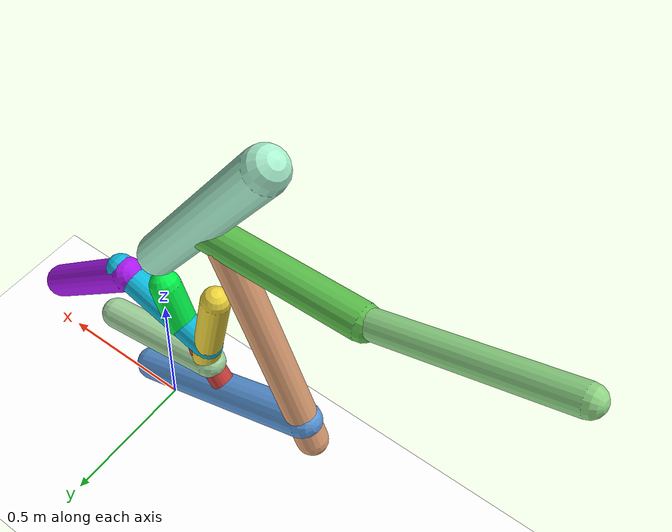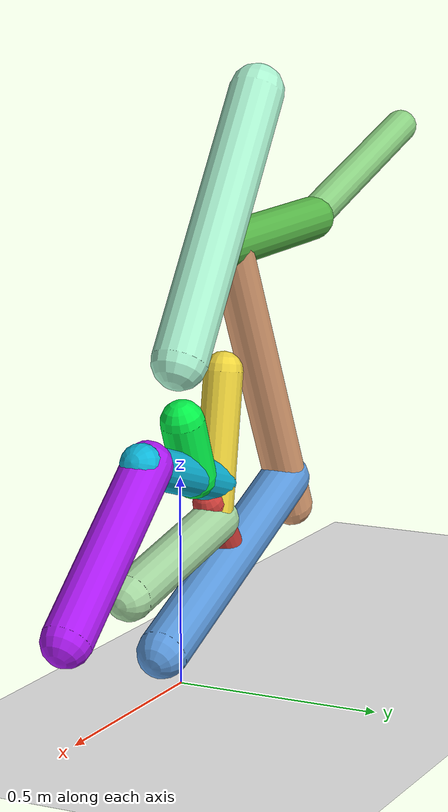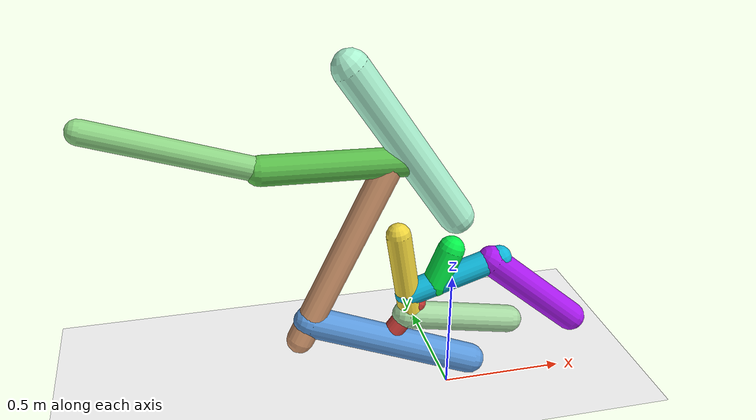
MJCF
<mujoco model="morphology">
  <option timestep="0.01"/>
  <default>
    <default class="/"/>
    <default class="0/"/>
    <default class="0/1/"/>
    <default class="0/1/2/"/>
    <default class="0/1/3/"/>
    <default class="0/1/3/4/"/>
    <default class="0/1/3/4/5/"/>
    <default class="0/1/3/4/5/6/"/>
    <default class="0/1/3/4/5/7/"/>
    <default class="0/1/3/4/5/7/8/"/>
    <default class="0/1/3/4/5/7/8/9/"/>
    <default class="0/1/3/4/5/7/8/10/"/>
  </default>
  <asset>
    <texture name="texplane" type="2d" builtin="checker" rgb1="0.10000000000000001 0.20000000000000001 0.29999999999999999" rgb2="0.20000000000000001 0.29999999999999999 0.40000000000000002" width="300" height="300"/>
    <material name="MatPlane" class="/" texture="texplane" texrepeat="20 20" specular="1" shininess="1" reflectance="0.5"/>
  </asset>
  <worldbody>
    <light name="//unnamed_light_0" class="/" directional="true" pos="0 0 1.5" dir="0 0 -1.3" cutoff="100" exponent="1" diffuse="1 1 1" specular="0.10000000000000001 0.10000000000000001 0.10000000000000001"/>
    <geom name="ground" class="/" type="plane" size="15 15 0.5" material="MatPlane" rgba="1 1 1 1"/>
    <site name="body" class="/" size="9.9999999999999995e-07 9.9999999999999995e-07 9.9999999999999995e-07" pos="0 0 0.77408537864685056"/>
    <body pos="0 0 0.77408537864685056" name="0/">
      <joint name="0/rootx/" class="/" type="slide" axis="1 0 0" limited="false" stiffness="0" armature="0" damping="0"/>
      <joint name="0/rootz/" class="/" type="slide" axis="0 0 1" limited="false" stiffness="0" armature="0" damping="0"/>
      <joint name="0/rooty/" class="/" type="hinge" axis="0 1 0" limited="false" stiffness="0" armature="0" damping="0"/>
      <geom name="0/geom" class="0/" type="capsule" contype="1" conaffinity="1" condim="3" size="0.068133523125485138" rgba="0.67368878331698201 0.95845228916324254 0.82361010507004162 1" friction="0.59999999999999998 0.10000000000000001 0.10000000000000001" fromto="0 0 0 -0.40518606765632675 0 0.59862969507248076"/>
      <site name="0/end0" class="0/" size="0.0050000000000000001" pos="-0.40518606765632675 0 0.59862969507248076"/>
      <site name="0/attach1" class="0/" size="9.9999999999999995e-07 9.9999999999999995e-07 9.9999999999999995e-07" pos="-0.16261823457615437 0 0.2402553097164184"/>
      <body pos="-0.16261823457615437 0 0.2402553097164184" name="0/1/">
        <joint name="0/1/joint/" class="0/" type="hinge" axis="0 1 0" limited="true" range="-34.207994179081147 34.207994179081147"/>
        <geom name="0/1/geom" class="0/1/" type="capsule" contype="1" conaffinity="1" condim="3" size="0.055274214201340301" rgba="0.36089236012931958 0.75295362614327199 0.29893024089903175 1" friction="0.59999999999999998 0.10000000000000001 0.10000000000000001" fromto="0 0 0 -0.56567874397857332 0 0.015321061938565861"/>
        <site name="0/1/end1" class="0/1/" size="0.0050000000000000001" pos="-0.56567874397857332 0 0.015321061938565861"/>
        <site name="0/1/attach2" class="0/1/" size="9.9999999999999995e-07 9.9999999999999995e-07 9.9999999999999995e-07" pos="-0.55503734378513259 0 0.015032846139029036"/>
        <body pos="-0.55503734378513259 0 0.015032846139029036" name="0/1/2/">
          <joint name="0/1/2/joint/" class="0/1/" type="hinge" axis="0 1 0" limited="true" range="-46.633738197059515 46.633738197059515"/>
          <geom name="0/1/2/geom" class="0/1/2/" type="capsule" contype="1" conaffinity="1" condim="3" size="0.044109706651571511" rgba="0.55599383299835448 0.83296011107246093 0.51749352358233303 1" friction="0.59999999999999998 0.10000000000000001 0.10000000000000001" fromto="0 0 0 -0.58656426139093387 0 0.19216393291291767"/>
          <site name="0/1/2/end2" class="0/1/2/" size="0.0050000000000000001" pos="-0.58656426139093387 0 0.19216393291291767"/>
        </body>
        <site name="0/1/attach3" class="0/1/" size="9.9999999999999995e-07 9.9999999999999995e-07 9.9999999999999995e-07" pos="-0.096282345080800483 0 0.0026077482816451586"/>
        <body pos="-0.096282345080800483 0 0.0026077482816451586" name="0/1/3/">
          <joint name="0/1/3/joint/" class="0/1/" type="hinge" axis="0 1 0" limited="true" range="-41.419231732101544 41.419231732101544"/>
          <geom name="0/1/3/geom" class="0/1/3/" type="capsule" contype="1" conaffinity="1" condim="3" size="0.053701980684382492" rgba="0.87018699014469136 0.62761939975638548 0.45384537230287059 1" friction="0.59999999999999998 0.10000000000000001 0.10000000000000001" fromto="0 0 0 -0.35175166034854072 0 -0.71389011365358357"/>
          <site name="0/1/3/end3" class="0/1/3/" size="0.0050000000000000001" pos="-0.35175166034854072 0 -0.71389011365358357"/>
          <site name="0/1/3/attach4" class="0/1/3/" size="9.9999999999999995e-07 9.9999999999999995e-07 9.9999999999999995e-07" pos="-0.31317669056032665 0 -0.63560110276731008"/>
          <body pos="-0.31317669056032665 0 -0.63560110276731008" name="0/1/3/4/">
            <geom name="0/1/3/4/geom" class="0/1/3/4/" type="capsule" contype="1" conaffinity="1" condim="3" size="0.061928049357544881" rgba="0.35748986429106344 0.60098576724272967 0.86789416492055449 1" friction="0.59999999999999998 0.10000000000000001 0.10000000000000001" fromto="0 0 0 0.66440738364730545 0 -0.28134733452442906"/>
            <site name="0/1/3/4/end4" class="0/1/3/4/" size="0.0050000000000000001" pos="0.66440738364730545 0 -0.28134733452442906"/>
            <site name="0/1/3/4/attach5" class="0/1/3/4/" size="9.9999999999999995e-07 9.9999999999999995e-07 9.9999999999999995e-07" pos="0.30797780474310288 0 -0.13041506851036705"/>
            <body pos="0.30797780474310288 0 -0.13041506851036705" name="0/1/3/4/5/">
              <joint name="0/1/3/4/5/joint/" class="0/1/3/4/" type="hinge" axis="0 1 0" limited="true" range="-31.645944407647018 31.645944407647018"/>
              <geom name="0/1/3/4/5/geom" class="0/1/3/4/5/" type="capsule" contype="1" conaffinity="1" condim="3" size="0.040505816399885548" rgba="0.80576584226427772 0.24361473910812237 0.22570649573779378 1" friction="0.59999999999999998 0.10000000000000001 0.10000000000000001" fromto="0 0 0 0.11701272950382857 0 0.15636463607744211"/>
              <site name="0/1/3/4/5/end5" class="0/1/3/4/5/" size="0.0050000000000000001" pos="0.11701272950382857 0 0.15636463607744211"/>
              <site name="0/1/3/4/5/attach6" class="0/1/3/4/5/" size="9.9999999999999995e-07 9.9999999999999995e-07 9.9999999999999995e-07" pos="0.080119281252668886 0 0.10706375544764896"/>
              <body pos="0.080119281252668886 0 0.10706375544764896" name="0/1/3/4/5/6/">
                <joint name="0/1/3/4/5/6/joint/" class="0/1/3/4/5/" type="hinge" axis="0 1 0" limited="true" range="-40.647240584044795 40.647240584044795"/>
                <geom name="0/1/3/4/5/6/geom" class="0/1/3/4/5/6/" type="capsule" contype="1" conaffinity="1" condim="3" size="0.055799563593050466" rgba="0.65393408603913183 0.85421922984932075 0.63545992268337648 1" friction="0.59999999999999998 0.10000000000000001 0.10000000000000001" fromto="0 0 0 0.43314333403469196 0 -0.08529218564910912"/>
                <site name="0/1/3/4/5/6/end6" class="0/1/3/4/5/6/" size="0.0050000000000000001" pos="0.43314333403469196 0 -0.08529218564910912"/>
              </body>
              <site name="0/1/3/4/5/attach7" class="0/1/3/4/5/" size="9.9999999999999995e-07 9.9999999999999995e-07 9.9999999999999995e-07" pos="0.09526545395961275 0 0.12730365407517286"/>
              <body pos="0.09526545395961275 0 0.12730365407517286" name="0/1/3/4/5/7/">
                <geom name="0/1/3/4/5/7/geom" class="0/1/3/4/5/7/" type="capsule" contype="1" conaffinity="1" condim="3" size="0.048314282904299767" rgba="0.94142437787209032 0.83873212916854512 0.23662781041021963 1" friction="0.59999999999999998 0.10000000000000001 0.10000000000000001" fromto="0 0 0 -0.055145347385145982 0 0.3376145189399482"/>
                <site name="0/1/3/4/5/7/end7" class="0/1/3/4/5/7/" size="0.0050000000000000001" pos="-0.055145347385145982 0 0.3376145189399482"/>
                <site name="0/1/3/4/5/7/attach8" class="0/1/3/4/5/7/" size="9.9999999999999995e-07 9.9999999999999995e-07 9.9999999999999995e-07" pos="-0.012142186375307605 0 0.074337702206276862"/>
                <body pos="-0.012142186375307605 0 0.074337702206276862" name="0/1/3/4/5/7/8/">
                  <geom name="0/1/3/4/5/7/8/geom" class="0/1/3/4/5/7/8/" type="capsule" contype="1" conaffinity="1" condim="3" size="0.050400837722818705" rgba="0.05373558433499348 0.7243563194274748 0.86146765965876804 1" friction="0.59999999999999998 0.10000000000000001 0.10000000000000001" fromto="0 0 0 0.36859763848868288 0 0.11555790437130198"/>
                  <site name="0/1/3/4/5/7/8/end8" class="0/1/3/4/5/7/8/" size="0.0050000000000000001" pos="0.36859763848868288 0 0.11555790437130198"/>
                  <site name="0/1/3/4/5/7/8/attach9" class="0/1/3/4/5/7/8/" size="9.9999999999999995e-07 9.9999999999999995e-07 9.9999999999999995e-07" pos="0.10996584025189435 0 0.03447505009538588"/>
                  <body pos="0.10996584025189435 0 0.03447505009538588" name="0/1/3/4/5/7/8/9/">
                    <joint name="0/1/3/4/5/7/8/9/joint/" class="0/1/3/4/5/7/8/" type="hinge" axis="0 1 0" limited="true" range="-49.668716895302381 49.668716895302381"/>
                    <geom name="0/1/3/4/5/7/8/9/geom" class="0/1/3/4/5/7/8/9/" type="capsule" contype="1" conaffinity="1" condim="3" size="0.05328852162972933" rgba="0.011334809490293196 0.95620555372785043 0.28808487728999344 1" friction="0.59999999999999998 0.10000000000000001 0.10000000000000001" fromto="0 0 0 0.058613484019736539 0 0.14331031902665203"/>
                    <site name="0/1/3/4/5/7/8/9/end9" class="0/1/3/4/5/7/8/9/" size="0.0050000000000000001" pos="0.058613484019736539 0 0.14331031902665203"/>
                  </body>
                  <site name="0/1/3/4/5/7/8/attach10" class="0/1/3/4/5/7/8/" size="9.9999999999999995e-07 9.9999999999999995e-07 9.9999999999999995e-07" pos="0.33967667024804615 0 0.10649098116479433"/>
                  <body pos="0.33967667024804615 0 0.10649098116479433" name="0/1/3/4/5/7/8/10/">
                    <joint name="0/1/3/4/5/7/8/10/joint/" class="0/1/3/4/5/7/8/" type="hinge" axis="0 1 0" limited="true" range="-46.049024020485291 46.049024020485291"/>
                    <geom name="0/1/3/4/5/7/8/10/geom" class="0/1/3/4/5/7/8/10/" type="capsule" contype="1" conaffinity="1" condim="3" size="0.059567712518968398" rgba="0.67915533204956635 0.096910000748154812 0.9533211868143463 1" friction="0.59999999999999998 0.10000000000000001 0.10000000000000001" fromto="0 0 0 0.37065416227408265 0 -0.31415937899289254"/>
                    <site name="0/1/3/4/5/7/8/10/end10" class="0/1/3/4/5/7/8/10/" size="0.0050000000000000001" pos="0.37065416227408265 0 -0.31415937899289254"/>
                  </body>
                </body>
              </body>
            </body>
          </body>
        </body>
      </body>
      <camera name="0/side" class="0/" mode="trackcom" pos="0.40000000000000002 -4 0.20000000000000001" quat="0.70699999999999996 0.70699999999999996 0 0"/>
    </body>
  </worldbody>
  <actuator>
    <motor name="0/1/motor" class="0/1/" ctrllimited="true" ctrlrange="-1 1" gear="66" joint="0/1/joint/"/>
    <motor name="0/1/2/motor" class="0/1/2/" ctrllimited="true" ctrlrange="-1 1" gear="65" joint="0/1/2/joint/"/>
    <motor name="0/1/3/motor" class="0/1/3/" ctrllimited="true" ctrlrange="-1 1" gear="57" joint="0/1/3/joint/"/>
    <motor name="0/1/3/4/5/motor" class="0/1/3/4/5/" ctrllimited="true" ctrlrange="-1 1" gear="62" joint="0/1/3/4/5/joint/"/>
    <motor name="0/1/3/4/5/6/motor" class="0/1/3/4/5/6/" ctrllimited="true" ctrlrange="-1 1" gear="55" joint="0/1/3/4/5/6/joint/"/>
    <motor name="0/1/3/4/5/7/8/9/motor" class="0/1/3/4/5/7/8/9/" ctrllimited="true" ctrlrange="-1 1" gear="73" joint="0/1/3/4/5/7/8/9/joint/"/>
    <motor name="0/1/3/4/5/7/8/10/motor" class="0/1/3/4/5/7/8/10/" ctrllimited="true" ctrlrange="-1 1" gear="72" joint="0/1/3/4/5/7/8/10/joint/"/>
  </actuator>
  <sensor>
    <subtreelinvel name="velocity" body="0/"/>
  </sensor>
</mujoco>
